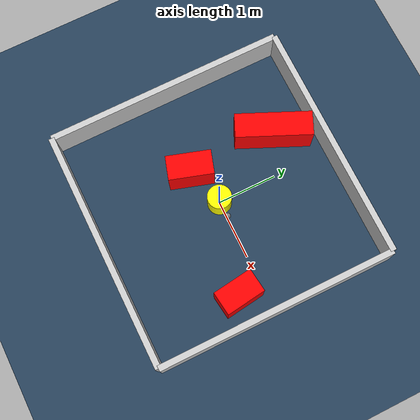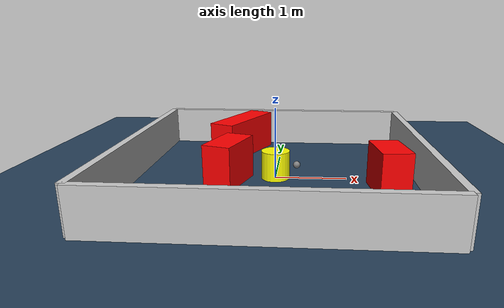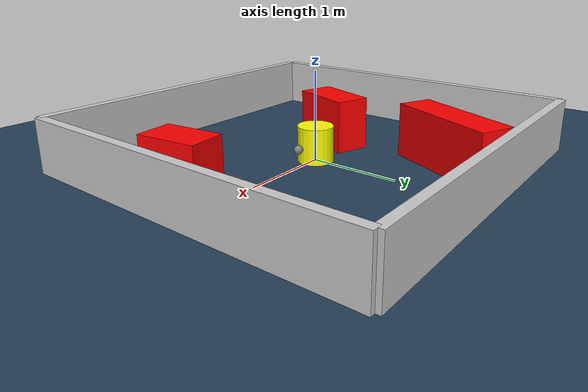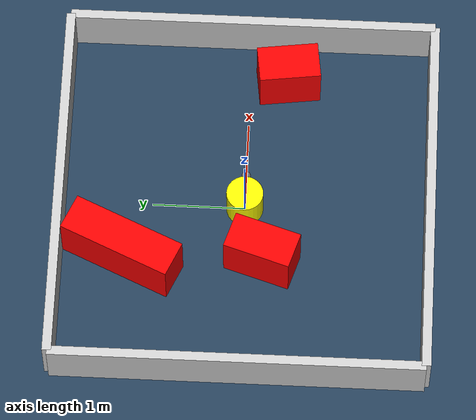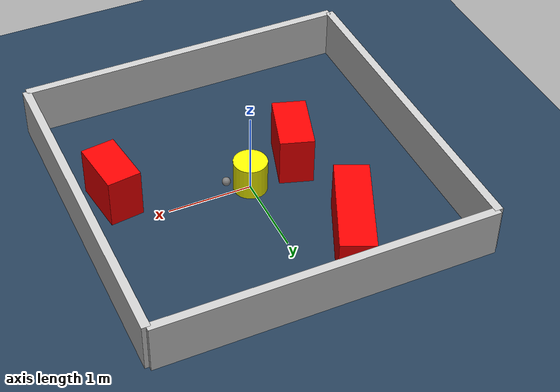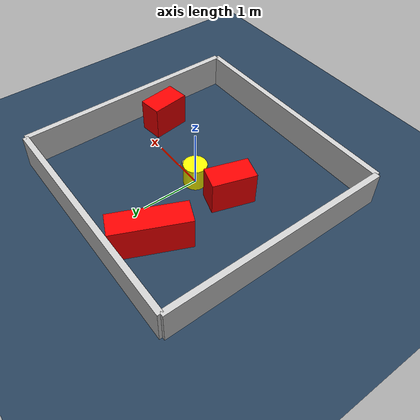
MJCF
<?xml version="1.0" ?>
<mujoco model="generated_environment">
  <option timestep="0.01" integrator="RK4" cone="elliptic"/>
  <default>
    <geom density="1"/>
  </default>
  <asset>
    <texture builtin="gradient" height="3072" rgb1="0.3 0.5 0.7" rgb2="0 0 0" type="skybox" width="512"/>
    <texture builtin="checker" height="300" mark="edge" markrgb="0.8 0.8 0.8" name="groundplane" rgb1="0.2 0.3 0.4" rgb2="0.1 0.2 0.3" type="2d" width="300"/>
    <material name="groundplane" reflectance="0.2" texrepeat="5 5" texture="groundplane" texuniform="true"/>
    <material name="robot" rgba="0.0 1.0 0.0 1"/>
  </asset>
  <worldbody>
    <light dir="0 0 -1" directional="true" pos="0 0 1.5"/>
    <geom condim="4" friction="1.0 0.005 0.001" material="groundplane" name="floor" size="0 0 0.05" type="plane"/>
    <body name="walls">
      <geom name="wall_1" condim="4" pos="-2.0 0.0 0.3" rgba="0.800000011920929 0.800000011920929 0.800000011920929 1.0" size="0.05 2.0 0.3" type="box"/>
      <geom name="wall_2" condim="4" pos="2.0 0.0 0.3" rgba="0.800000011920929 0.800000011920929 0.800000011920929 1.0" size="0.05 2.0 0.3" type="box"/>
      <geom name="wall_3" condim="4" pos="0.0 -2.0 0.3" rgba="0.800000011920929 0.800000011920929 0.800000011920929 1.0" size="2.0 0.05 0.3" type="box"/>
      <geom name="wall_4" condim="4" pos="0.0 2.0 0.3" rgba="0.800000011920929 0.800000011920929 0.800000011920929 1.0" size="2.0 0.05 0.3" type="box"/>
    </body>
    <body name="robot">
      <joint name="joint_x" type="slide" pos="0 0 0" axis="1 0 0"/>
      <joint name="joint_y" type="slide" pos="0 0 0" axis="0 1 0"/>
      <geom name="robot" type="sphere" pos="0.3 0.0 0.2" size="0.05" mass="5." friction="1.0 0.005 0.0001" condim="4" rgba="0.5 0.5 0.5 1.0"/>
      <site name="sensor_ball"/>
    </body>
    <body name="obstacle_movable_1">
      <geom name="obstacle_movable_1" condim="4" pos="0.0 0.0 0.2" euler="0 0 0.0" friction="1.0 0.005 0.001" rgba="1.0 1.0 0.0 1.0" size="0.2 0.2 0.0" type="cylinder" mass="0.1"/>
      <joint type="free"/>
    </body>
    <body name="obstacle_2_static">
      <geom name="obstacle_2_static" condim="4" pos="-0.6307384018788249 -0.21305584697858948 0.3" euler="0 0 72.55524312958593" friction="1.0 0.005 0.001" rgba="1 0 0 1" size="0.3691861493326594 0.2 0.3" type="box"/>
    </body>
    <body name="obstacle_3_static">
      <geom name="obstacle_3_static" condim="4" pos="1.5106427676359941 -0.41333930207180036 0.3" euler="0 0 97.40411750420999" friction="1.0 0.005 0.001" rgba="1 0 0 1" size="0.333176329208595 0.2 0.3" type="box"/>
    </body>
    <body name="obstacle_4_static">
      <geom name="obstacle_4_static" condim="4" pos="-0.6434001297000151 1.2923473732119934 0.3" euler="0 0 245.91883809362878" friction="1.0 0.005 0.001" rgba="1 0 0 1" size="0.6308286380737687 0.2 0.3" type="box"/>
    </body>
  </worldbody>
  <actuator>
    <motor name="actuator_x" joint="joint_x" gear="1" ctrlrange="-1 1"/>
    <motor name="actuator_y" joint="joint_y" gear="1" ctrlrange="-1 1"/>
  </actuator>
</mujoco>
